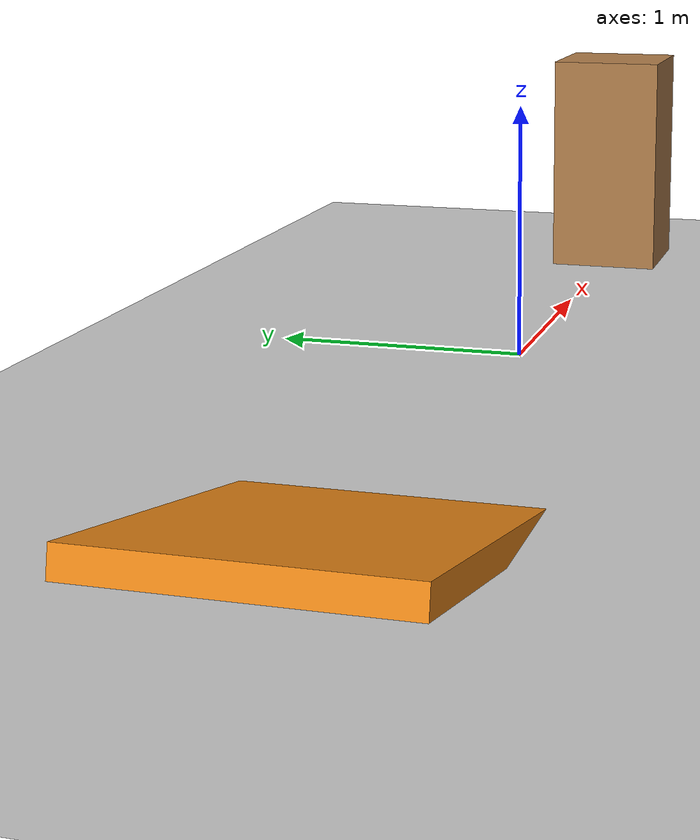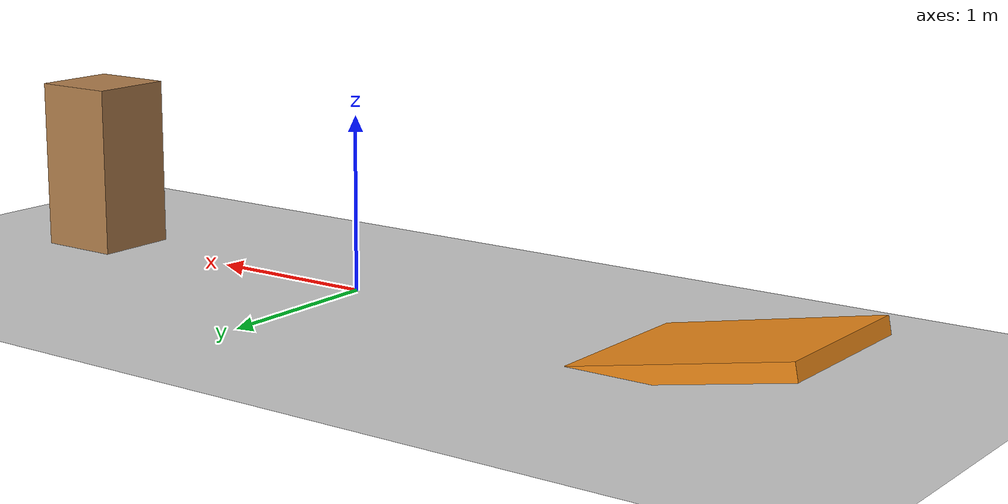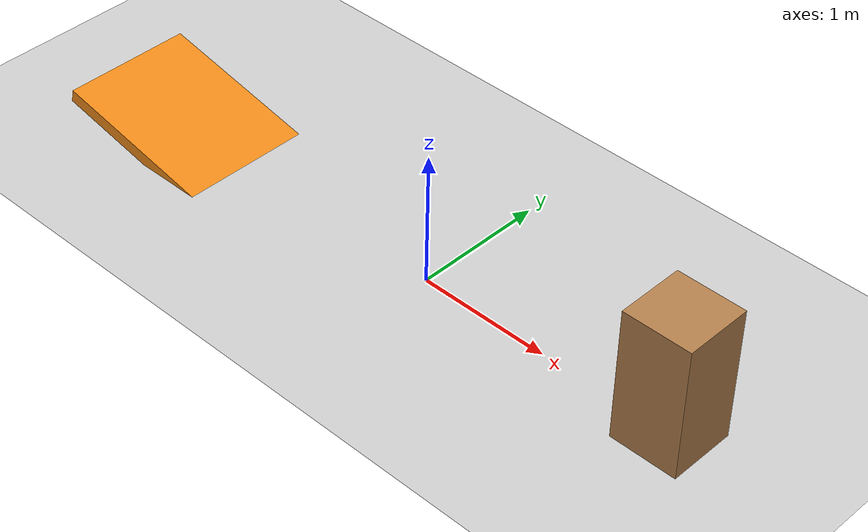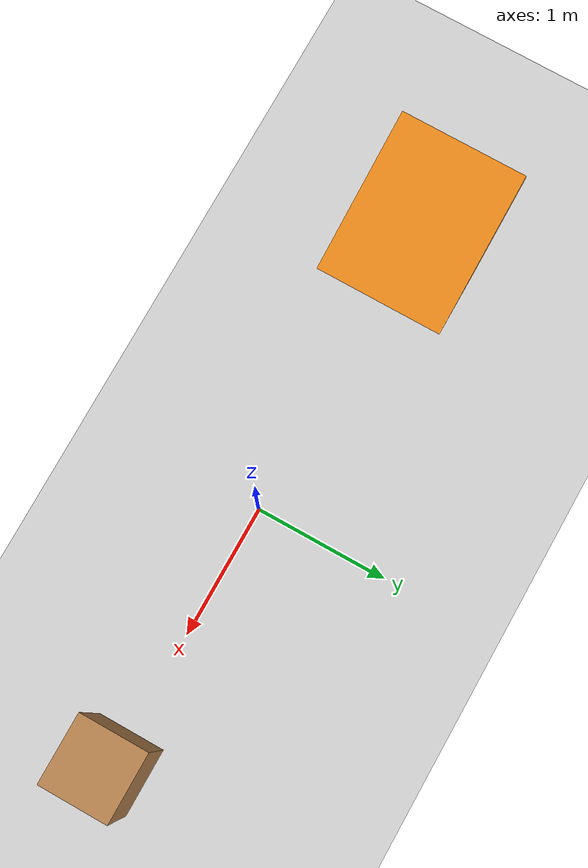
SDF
<?xml version="1.0" ?>
<sdf version="1.6">
  <world name="wheel_legged_robot_world">

    <!-- 物理引擎设置 -->
    <physics name="default_physics" default="0" type="ode">
      <max_step_size>0.001</max_step_size>
      <real_time_factor>1.0</real_time_factor>
      <real_time_update_rate>1000</real_time_update_rate>
      <ode>
        <solver>
          <type>quick</type>
          <iters>150</iters>
          <sor>1.400000</sor>
          <use_dynamic_moi_rescaling>1</use_dynamic_moi_rescaling>
        </solver>
        <constraints>
          <cfm>0.00001</cfm>
          <erp>0.2</erp>
          <contact_max_correcting_vel>2000.000000</contact_max_correcting_vel>
          <contact_surface_layer>0.01000</contact_surface_layer>
        </constraints>
      </ode>
    </physics>

    <!-- 重力设置 -->
    <gravity>0 0 -9.8</gravity>
    <magnetic_field>6e-06 2.3e-05 -4.2e-05</magnetic_field>
    <atmosphere type='adiabatic'/>

    <!-- 场景设置 -->
    <scene>
      <ambient>0.4 0.4 0.4 1</ambient>
      <background>0.7 0.7 0.7 1</background>
      <shadows>true</shadows>
    </scene>

    <!-- 光源 -->
    <light name='sun' type='directional'>
      <cast_shadows>1</cast_shadows>
      <pose>0 0 10 0 -0 0</pose>
      <diffuse>0.8 0.8 0.8 1</diffuse>
      <specular>0.2 0.2 0.2 1</specular>
      <attenuation>
        <range>1000</range>
        <constant>0.9</constant>
        <linear>0.01</linear>
        <quadratic>0.001</quadratic>
      </attenuation>
      <direction>-0.5 0.1 -0.9</direction>
    </light>

    <!-- 地面 -->
    <model name='ground_plane'>
      <static>1</static>
      <link name='link'>
        <collision name='collision'>
          <geometry>
            <plane>
              <normal>0 0 1</normal>
              <size>100 100</size>
            </plane>
          </geometry>
          <surface>
            <contact>
              <collide_bitmask>65535</collide_bitmask>
              <ode/>
            </contact>
            <friction>
              <ode>
                <mu>100</mu>
                <mu2>50</mu2>
              </ode>
            </friction>
          </surface>
        </collision>
        <visual name='visual'>
          <cast_shadows>0</cast_shadows>
          <geometry>
            <plane>
              <normal>0 0 1</normal>
              <size>100 100</size>
            </plane>
          </geometry>
          <material>
            <script>
              <uri>file://media/materials/scripts/gazebo.material</uri>
              <name>Gazebo/Grey</name>
            </script>
          </material>
        </visual>
      </link>
    </model>

    <!-- 测试障碍物 -->
    <model name='test_box'>
      <pose>2 0 0.5 0 0 0</pose>
      <static>1</static>
      <link name='link'>
        <collision name='collision'>
          <geometry>
            <box>
              <size>0.5 0.5 1</size>
            </box>
          </geometry>
        </collision>
        <visual name='visual'>
          <geometry>
            <box>
              <size>0.5 0.5 1</size>
            </box>
          </geometry>
          <material>
            <script>
              <uri>file://media/materials/scripts/gazebo.material</uri>
              <name>Gazebo/Wood</name>
            </script>
          </material>
        </visual>
      </link>
    </model>

    <!-- 坡道测试 -->
    <model name='ramp'>
      <pose>-2 0 0 0 0.2 0</pose>
      <static>1</static>
      <link name='link'>
        <collision name='collision'>
          <geometry>
            <box>
              <size>2 1 0.1</size>
            </box>
          </geometry>
          <surface>
            <friction>
              <ode>
                <mu>0.8</mu>
                <mu2>0.8</mu2>
              </ode>
            </friction>
          </surface>
        </collision>
        <visual name='visual'>
          <geometry>
            <box>
              <size>2 1 0.1</size>
            </box>
          </geometry>
          <material>
            <script>
              <uri>file://media/materials/scripts/gazebo.material</uri>
              <name>Gazebo/Orange</name>
            </script>
          </material>
        </visual>
      </link>
    </model>

    <!-- GUI设置 -->
    <gui fullscreen='0'>
      <camera name='user_camera'>
        <pose>4 -4 2 0 0.275643 2.35619</pose>
        <view_controller>orbit</view_controller>
        <projection_type>perspective</projection_type>
      </camera>
    </gui>

  </world>
</sdf>
